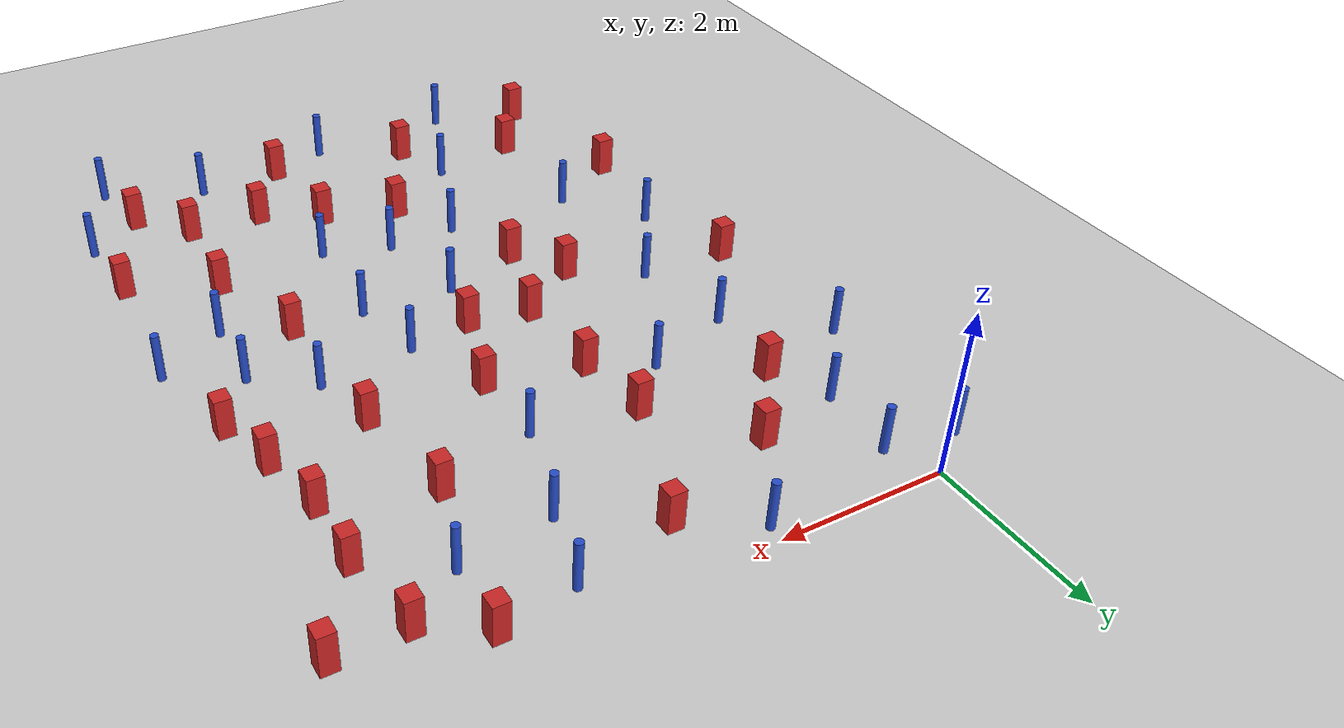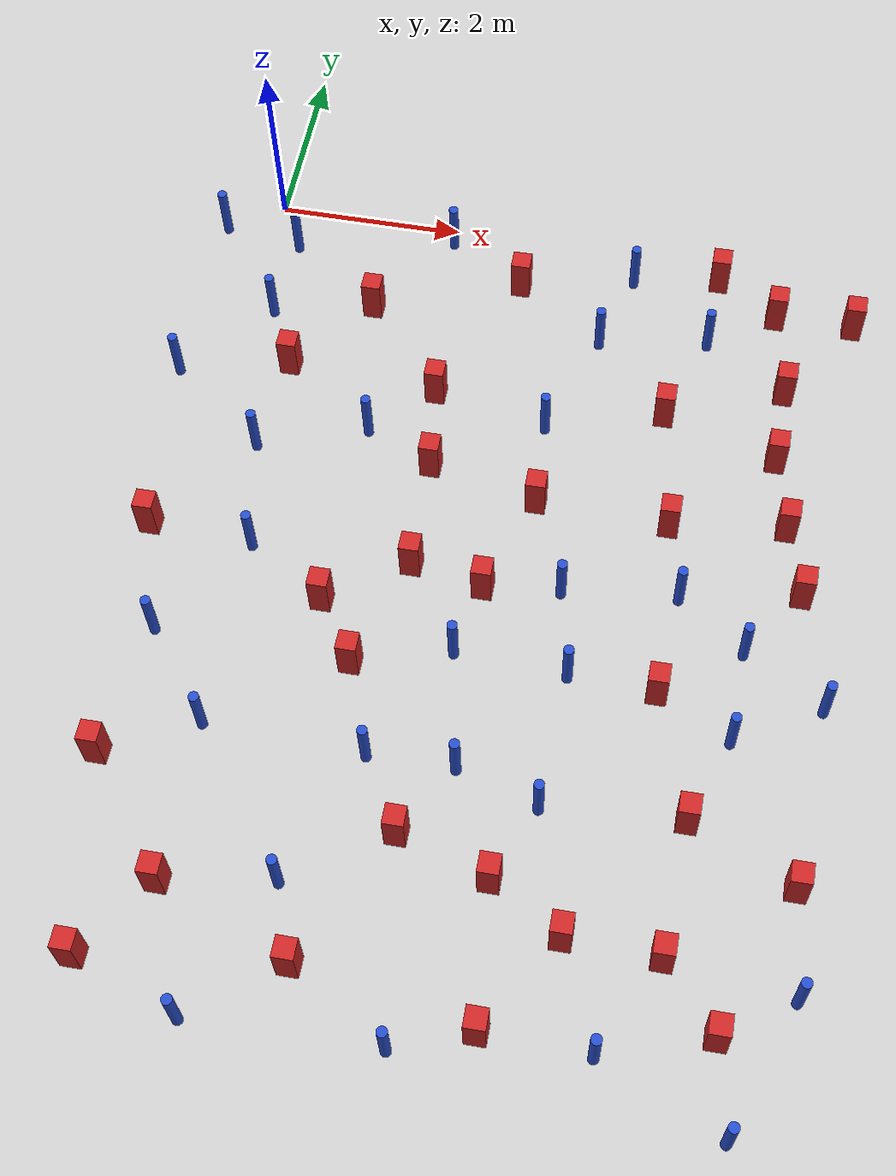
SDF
<sdf version="1.6">
 <world name="default">
  <model name="ground_plane">
   <static>1</static>
   <link name="link">
    <collision name="collision">
     <geometry><plane><normal>0 0 1</normal><size>100 100</size></plane></geometry>
     <surface><friction><ode><mu>100</mu><mu2>50</mu2></ode></friction></surface>
    </collision>
    <visual name="visual">
     <cast_shadows>0</cast_shadows>
     <geometry><plane><normal>0 0 1</normal><size>100 100</size></plane></geometry>
     <material>
      <script><uri>file://media/materials/scripts/gazebo.material</uri><name>Gazebo/Grey</name></script>
     </material>
    </visual>
   </link>
  </model>
  <model name="pole_obstacle3">
   <static>0</static>
   <link name="link">
    <pose>0 0 0.3 0 -0 0</pose>
    <inertial>
     <mass>1</mass>
     <inertia><ixx>0.145833</ixx><ixy>0</ixy><ixz>0</ixz><iyy>0.145833</iyy><iyz>0</iyz><izz>0.125</izz></inertia>
    </inertial>
    <collision name="collision">
     <geometry><cylinder><radius>0.05</radius><length>0.6</length></cylinder></geometry>
    </collision>
    <visual name="visual">
     <geometry><cylinder><radius>0.05</radius><length>0.6</length></cylinder></geometry>
     <material>
      <script><name>Gazebo/Blue</name><uri>file://media/materials/scripts/gazebo.material</uri></script>
     </material>
    </visual>
   </link>
   <pose>5.63583 -5.72954 -5e-06 0 0 -6.7e-05</pose>
  </model>
  <model name="pole_obstacle4">
   <static>0</static>
   <link name="link">
    <pose>0 0 0.3 0 -0 0</pose>
    <inertial>
     <mass>1</mass>
     <inertia><ixx>0.145833</ixx><ixy>0</ixy><ixz>0</ixz><iyy>0.145833</iyy><iyz>0</iyz><izz>0.125</izz></inertia>
    </inertial>
    <collision name="collision">
     <geometry><cylinder><radius>0.05</radius><length>0.6</length></cylinder></geometry>
    </collision>
    <visual name="visual">
     <geometry><cylinder><radius>0.05</radius><length>0.6</length></cylinder></geometry>
     <material>
      <script><name>Gazebo/Blue</name><uri>file://media/materials/scripts/gazebo.material</uri></script>
     </material>
    </visual>
   </link>
   <pose>0.473896 -3.21409 -5e-06 0 0 -2e-05</pose>
  </model>
  <model name="pole_obstacle10">
   <static>0</static>
   <link name="link">
    <pose>0 0 0.3 0 -0 0</pose>
    <inertial>
     <mass>1</mass>
     <inertia><ixx>0.145833</ixx><ixy>0</ixy><ixz>0</ixz><iyy>0.145833</iyy><iyz>0</iyz><izz>0.125</izz></inertia>
    </inertial>
    <collision name="collision">
     <geometry><cylinder><radius>0.05</radius><length>0.6</length></cylinder></geometry>
    </collision>
    <visual name="visual">
     <geometry><cylinder><radius>0.05</radius><length>0.6</length></cylinder></geometry>
     <material>
      <script><name>Gazebo/Blue</name><uri>file://media/materials/scripts/gazebo.material</uri></script>
     </material>
    </visual>
   </link>
   <pose>4.03651 -5.31146 -5e-06 0 0 -3.8e-05</pose>
  </model>
  <model name="pole_obstacle13">
   <static>0</static>
   <link name="link">
    <pose>0 0 0.3 0 -0 0</pose>
    <inertial>
     <mass>1</mass>
     <inertia><ixx>0.145833</ixx><ixy>0</ixy><ixz>0</ixz><iyy>0.145833</iyy><iyz>0</iyz><izz>0.125</izz></inertia>
    </inertial>
    <collision name="collision">
     <geometry><cylinder><radius>0.05</radius><length>0.6</length></cylinder></geometry>
    </collision>
    <visual name="visual">
     <geometry><cylinder><radius>0.05</radius><length>0.6</length></cylinder></geometry>
     <material>
      <script><name>Gazebo/Blue</name><uri>file://media/materials/scripts/gazebo.material</uri></script>
     </material>
    </visual>
   </link>
   <pose>1.98811 -0.198835 -5e-06 0 -0 0</pose>
  </model>
  <model name="square_post_obstacle10">
   <static>0</static>
   <link name="link">
    <pose>0 0 0.25 0 -0 0</pose>
    <inertial>
     <mass>100</mass>
     <inertia>
      <ixx>0.166667</ixx>
      <ixy>0</ixy>
      <ixz>0</ixz>
      <iyy>0.166667</iyy>
      <iyz>0</iyz>
      <izz>0.166667</izz>
     </inertia>
    </inertial>
    <collision name="collision"><geometry><box><size>0.2 0.2 0.5</size></box></geometry></collision>
    <visual name="visual">
     <geometry><box><size>0.2 0.2 0.5</size></box></geometry>
     <material>
      <script><name>Gazebo/Red</name><uri>file://media/materials/scripts/gazebo.material</uri></script>
     </material>
    </visual>
   </link>
   <pose>2.82312 -0.687172 0 -1e-06 7e-06 -0.000607</pose>
  </model>
  <model name="pole_obstacle16">
   <static>0</static>
   <link name="link">
    <pose>0 0 0.3 0 -0 0</pose>
    <inertial>
     <mass>1</mass>
     <inertia><ixx>0.145833</ixx><ixy>0</ixy><ixz>0</ixz><iyy>0.145833</iyy><iyz>0</iyz><izz>0.125</izz></inertia>
    </inertial>
    <collision name="collision">
     <geometry><cylinder><radius>0.05</radius><length>0.6</length></cylinder></geometry>
    </collision>
    <visual name="visual">
     <geometry><cylinder><radius>0.05</radius><length>0.6</length></cylinder></geometry>
     <material>
      <script><name>Gazebo/Blue</name><uri>file://media/materials/scripts/gazebo.material</uri></script>
     </material>
    </visual>
   </link>
   <pose>0.024837 -5.471 -5e-06 0 0 -6.1e-05</pose>
  </model>
  <model name="pole_obstacle18">
   <static>0</static>
   <link name="link">
    <pose>0 0 0.3 0 -0 0</pose>
    <inertial>
     <mass>1</mass>
     <inertia><ixx>0.145833</ixx><ixy>0</ixy><ixz>0</ixz><iyy>0.145833</iyy><iyz>0</iyz><izz>0.125</izz></inertia>
    </inertial>
    <collision name="collision">
     <geometry><cylinder><radius>0.05</radius><length>0.6</length></cylinder></geometry>
    </collision>
    <visual name="visual">
     <geometry><cylinder><radius>0.05</radius><length>0.6</length></cylinder></geometry>
     <material>
      <script><name>Gazebo/Blue</name><uri>file://media/materials/scripts/gazebo.material</uri></script>
     </material>
    </visual>
   </link>
   <pose>0.723135 -4.39332 -5e-06 0 0 -5.6e-05</pose>
  </model>
  <model name="square_post_obstacle18">
   <static>0</static>
   <link name="link">
    <pose>0 0 0.25 0 -0 0</pose>
    <inertial>
     <mass>100</mass>
     <inertia>
      <ixx>0.166667</ixx>
      <ixy>0</ixy>
      <ixz>0</ixz>
      <iyy>0.166667</iyy>
      <iyz>0</iyz>
      <izz>0.166667</izz>
     </inertia>
    </inertial>
    <collision name="collision"><geometry><box><size>0.2 0.2 0.5</size></box></geometry></collision>
    <visual name="visual">
     <geometry><box><size>0.2 0.2 0.5</size></box></geometry>
     <material>
      <script><name>Gazebo/Red</name><uri>file://media/materials/scripts/gazebo.material</uri></script>
     </material>
    </visual>
   </link>
   <pose>5.32556 -6.58024 0 -1e-06 7e-06 -0.000607</pose>
  </model>
  <model name="pole_obstacle19">
   <static>0</static>
   <link name="link">
    <pose>0 0 0.3 0 -0 0</pose>
    <inertial>
     <mass>1</mass>
     <inertia><ixx>0.145833</ixx><ixy>0</ixy><ixz>0</ixz><iyy>0.145833</iyy><iyz>0</iyz><izz>0.125</izz></inertia>
    </inertial>
    <collision name="collision">
     <geometry><cylinder><radius>0.05</radius><length>0.6</length></cylinder></geometry>
    </collision>
    <visual name="visual">
     <geometry><cylinder><radius>0.05</radius><length>0.6</length></cylinder></geometry>
     <material>
      <script><name>Gazebo/Blue</name><uri>file://media/materials/scripts/gazebo.material</uri></script>
     </material>
    </visual>
   </link>
   <pose>-0.563974 -2.40834 -5e-06 0 -0 5e-06</pose>
  </model>
  <model name="pole_obstacle22">
   <static>0</static>
   <link name="link">
    <pose>0 0 0.3 0 -0 0</pose>
    <inertial>
     <mass>1</mass>
     <inertia><ixx>0.145833</ixx><ixy>0</ixy><ixz>0</ixz><iyy>0.145833</iyy><iyz>0</iyz><izz>0.125</izz></inertia>
    </inertial>
    <collision name="collision">
     <geometry><cylinder><radius>0.05</radius><length>0.6</length></cylinder></geometry>
    </collision>
    <visual name="visual">
     <geometry><cylinder><radius>0.05</radius><length>0.6</length></cylinder></geometry>
     <material>
      <script><name>Gazebo/Blue</name><uri>file://media/materials/scripts/gazebo.material</uri></script>
     </material>
    </visual>
   </link>
   <pose>6.45357 -8.04953 -5e-06 0 0 -5e-05</pose>
  </model>
  <model name="pole_obstacle23">
   <static>0</static>
   <link name="link">
    <pose>0 0 0.3 0 -0 0</pose>
    <inertial>
     <mass>1</mass>
     <inertia><ixx>0.145833</ixx><ixy>0</ixy><ixz>0</ixz><iyy>0.145833</iyy><iyz>0</iyz><izz>0.125</izz></inertia>
    </inertial>
    <collision name="collision">
     <geometry><cylinder><radius>0.05</radius><length>0.6</length></cylinder></geometry>
    </collision>
    <visual name="visual">
     <geometry><cylinder><radius>0.05</radius><length>0.6</length></cylinder></geometry>
     <material>
      <script><name>Gazebo/Blue</name><uri>file://media/materials/scripts/gazebo.material</uri></script>
     </material>
    </visual>
   </link>
   <pose>0.292143 -0.538105 -5e-06 0 0 -8e-05</pose>
  </model>
  <model name="square_post_obstacle23">
   <static>0</static>
   <link name="link">
    <pose>0 0 0.25 0 -0 0</pose>
    <inertial>
     <mass>100</mass>
     <inertia>
      <ixx>0.166667</ixx>
      <ixy>0</ixy>
      <ixz>0</ixz>
      <iyy>0.166667</iyy>
      <iyz>0</iyz>
      <izz>0.166667</izz>
     </inertia>
    </inertial>
    <collision name="collision"><geometry><box><size>0.2 0.2 0.5</size></box></geometry></collision>
    <visual name="visual">
     <geometry><box><size>0.2 0.2 0.5</size></box></geometry>
     <material>
      <script><name>Gazebo/Red</name><uri>file://media/materials/scripts/gazebo.material</uri></script>
     </material>
    </visual>
   </link>
   <pose>4.95141 -0.267318 0 -1e-06 7e-06 -0.000607</pose>
  </model>
  <model name="pole_obstacle26">
   <static>0</static>
   <link name="link">
    <pose>0 0 0.3 0 -0 0</pose>
    <inertial>
     <mass>1</mass>
     <inertia><ixx>0.145833</ixx><ixy>0</ixy><ixz>0</ixz><iyy>0.145833</iyy><iyz>0</iyz><izz>0.125</izz></inertia>
    </inertial>
    <collision name="collision">
     <geometry><cylinder><radius>0.05</radius><length>0.6</length></cylinder></geometry>
    </collision>
    <visual name="visual">
     <geometry><cylinder><radius>0.05</radius><length>0.6</length></cylinder></geometry>
     <material>
      <script><name>Gazebo/Blue</name><uri>file://media/materials/scripts/gazebo.material</uri></script>
     </material>
    </visual>
   </link>
   <pose>4.91337 -1.1411 -5e-06 0 0 -5.9e-05</pose>
  </model>
  <model name="pole_obstacle27">
   <static>0</static>
   <link name="link">
    <pose>0 0 0.3 0 -0 0</pose>
    <inertial>
     <mass>1</mass>
     <inertia><ixx>0.145833</ixx><ixy>0</ixy><ixz>0</ixz><iyy>0.145833</iyy><iyz>0</iyz><izz>0.125</izz></inertia>
    </inertial>
    <collision name="collision">
     <geometry><cylinder><radius>0.05</radius><length>0.6</length></cylinder></geometry>
    </collision>
    <visual name="visual">
     <geometry><cylinder><radius>0.05</radius><length>0.6</length></cylinder></geometry>
     <material>
      <script><name>Gazebo/Blue</name><uri>file://media/materials/scripts/gazebo.material</uri></script>
     </material>
    </visual>
   </link>
   <pose>0.235479 -1.47166 -5e-06 0 0 -1e-06</pose>
  </model>
  <model name="square_post_obstacle25">
   <static>0</static>
   <link name="link">
    <pose>0 0 0.25 0 -0 0</pose>
    <inertial>
     <mass>100</mass>
     <inertia>
      <ixx>0.166667</ixx>
      <ixy>0</ixy>
      <ixz>0</ixz>
      <iyy>0.166667</iyy>
      <iyz>0</iyz>
      <izz>0.166667</izz>
     </inertia>
    </inertial>
    <collision name="collision"><geometry><box><size>0.2 0.2 0.5</size></box></geometry></collision>
    <visual name="visual">
     <geometry><box><size>0.2 0.2 0.5</size></box></geometry>
     <material>
      <script><name>Gazebo/Red</name><uri>file://media/materials/scripts/gazebo.material</uri></script>
     </material>
    </visual>
   </link>
   <pose>4.36926 -7.84441 0 -1e-06 7e-06 -0.000607</pose>
  </model>
  <model name="pole_obstacle29">
   <static>0</static>
   <link name="link">
    <pose>0 0 0.3 0 -0 0</pose>
    <inertial>
     <mass>1</mass>
     <inertia><ixx>0.145833</ixx><ixy>0</ixy><ixz>0</ixz><iyy>0.145833</iyy><iyz>0</iyz><izz>0.125</izz></inertia>
    </inertial>
    <collision name="collision">
     <geometry><cylinder><radius>0.05</radius><length>0.6</length></cylinder></geometry>
    </collision>
    <visual name="visual">
     <geometry><cylinder><radius>0.05</radius><length>0.6</length></cylinder></geometry>
     <material>
      <script><name>Gazebo/Blue</name><uri>file://media/materials/scripts/gazebo.material</uri></script>
     </material>
    </visual>
   </link>
   <pose>4.98197 -4.29209 -4e-06 -1e-06 -0 -0.000164</pose>
  </model>
  <model name="square_post_obstacle27">
   <static>0</static>
   <link name="link">
    <pose>0 0 0.25 0 -0 0</pose>
    <inertial>
     <mass>100</mass>
     <inertia>
      <ixx>0.166667</ixx>
      <ixy>0</ixy>
      <ixz>0</ixz>
      <iyy>0.166667</iyy>
      <iyz>0</iyz>
      <izz>0.166667</izz>
     </inertia>
    </inertial>
    <collision name="collision"><geometry><box><size>0.2 0.2 0.5</size></box></geometry></collision>
    <visual name="visual">
     <geometry><box><size>0.2 0.2 0.5</size></box></geometry>
     <material>
      <script><name>Gazebo/Red</name><uri>file://media/materials/scripts/gazebo.material</uri></script>
     </material>
    </visual>
   </link>
   <pose>2.17804 -2.25755 0 -1e-06 7e-06 -0.000607</pose>
  </model>
  <model name="square_post_obstacle32">
   <static>0</static>
   <link name="link">
    <pose>0 0 0.25 0 -0 0</pose>
    <inertial>
     <mass>100</mass>
     <inertia>
      <ixx>0.166667</ixx>
      <ixy>0</ixy>
      <ixz>0</ixz>
      <iyy>0.166667</iyy>
      <iyz>0</iyz>
      <izz>0.166667</izz>
     </inertia>
    </inertial>
    <collision name="collision"><geometry><box><size>0.2 0.2 0.5</size></box></geometry></collision>
    <visual name="visual">
     <geometry><box><size>0.2 0.2 0.5</size></box></geometry>
     <material>
      <script><name>Gazebo/Red</name><uri>file://media/materials/scripts/gazebo.material</uri></script>
     </material>
    </visual>
   </link>
   <pose>3.42953 -3.42662 0 -1e-06 7e-06 -0.000607</pose>
  </model>
  <model name="pole_obstacle37">
   <static>0</static>
   <link name="link">
    <pose>0 0 0.3 0 -0 0</pose>
    <inertial>
     <mass>1</mass>
     <inertia><ixx>0.145833</ixx><ixy>0</ixy><ixz>0</ixz><iyy>0.145833</iyy><iyz>0</iyz><izz>0.125</izz></inertia>
    </inertial>
    <collision name="collision">
     <geometry><cylinder><radius>0.05</radius><length>0.6</length></cylinder></geometry>
    </collision>
    <visual name="visual">
     <geometry><cylinder><radius>0.05</radius><length>0.6</length></cylinder></geometry>
     <material>
      <script><name>Gazebo/Blue</name><uri>file://media/materials/scripts/gazebo.material</uri></script>
     </material>
    </visual>
   </link>
   <pose>4.7955 -8.80986 -5e-06 0 0 -2.6e-05</pose>
  </model>
  <model name="pole_obstacle41">
   <static>0</static>
   <link name="link">
    <pose>0 0 0.3 0 -0 0</pose>
    <inertial>
     <mass>1</mass>
     <inertia><ixx>0.145833</ixx><ixy>0</ixy><ixz>0</ixz><iyy>0.145833</iyy><iyz>0</iyz><izz>0.125</izz></inertia>
    </inertial>
    <collision name="collision">
     <geometry><cylinder><radius>0.05</radius><length>0.6</length></cylinder></geometry>
    </collision>
    <visual name="visual">
     <geometry><cylinder><radius>0.05</radius><length>0.6</length></cylinder></geometry>
     <material>
      <script><name>Gazebo/Blue</name><uri>file://media/materials/scripts/gazebo.material</uri></script>
     </material>
    </visual>
   </link>
   <pose>3.167 -6.42083 -5e-06 0 0 -1e-05</pose>
  </model>
  <model name="square_post_obstacle46">
   <static>0</static>
   <link name="link">
    <pose>0 0 0.25 0 -0 0</pose>
    <inertial>
     <mass>100</mass>
     <inertia>
      <ixx>0.166667</ixx>
      <ixy>0</ixy>
      <ixz>0</ixz>
      <iyy>0.166667</iyy>
      <iyz>0</iyz>
      <izz>0.166667</izz>
     </inertia>
    </inertial>
    <collision name="collision"><geometry><box><size>0.2 0.2 0.5</size></box></geometry></collision>
    <visual name="visual">
     <geometry><box><size>0.2 0.2 0.5</size></box></geometry>
     <material>
      <script><name>Gazebo/Red</name><uri>file://media/materials/scripts/gazebo.material</uri></script>
     </material>
    </visual>
   </link>
   <pose>2.08424 -8.46592 0 -1e-06 7e-06 -0.000607</pose>
  </model>
  <model name="square_post_obstacle47">
   <static>0</static>
   <link name="link">
    <pose>0 0 0.25 0 -0 0</pose>
    <inertial>
     <mass>100</mass>
     <inertia>
      <ixx>0.166667</ixx>
      <ixy>0</ixy>
      <ixz>0</ixz>
      <iyy>0.166667</iyy>
      <iyz>0</iyz>
      <izz>0.166667</izz>
     </inertia>
    </inertial>
    <collision name="collision"><geometry><box><size>0.2 0.2 0.5</size></box></geometry></collision>
    <visual name="visual">
     <geometry><box><size>0.2 0.2 0.5</size></box></geometry>
     <material>
      <script><name>Gazebo/Red</name><uri>file://media/materials/scripts/gazebo.material</uri></script>
     </material>
    </visual>
   </link>
   <pose>0.587191 -2.145 0 -1e-06 7e-06 -0.000607</pose>
  </model>
  <model name="pole_obstacle49">
   <static>0</static>
   <link name="link">
    <pose>0 0 0.3 0 -0 0</pose>
    <inertial>
     <mass>1</mass>
     <inertia><ixx>0.145833</ixx><ixy>0</ixy><ixz>0</ixz><iyy>0.145833</iyy><iyz>0</iyz><izz>0.125</izz></inertia>
    </inertial>
    <collision name="collision">
     <geometry><cylinder><radius>0.05</radius><length>0.6</length></cylinder></geometry>
    </collision>
    <visual name="visual">
     <geometry><cylinder><radius>0.05</radius><length>0.6</length></cylinder></geometry>
     <material>
      <script><name>Gazebo/Blue</name><uri>file://media/materials/scripts/gazebo.material</uri></script>
     </material>
    </visual>
   </link>
   <pose>4.02995 -0.420778 -3e-06 0 -0 2.1e-05</pose>
  </model>
  <model name="pole_obstacle50">
   <static>0</static>
   <link name="link">
    <pose>0 0 0.3 0 -0 0</pose>
    <inertial>
     <mass>1</mass>
     <inertia><ixx>0.145833</ixx><ixy>0</ixy><ixz>0</ixz><iyy>0.145833</iyy><iyz>0</iyz><izz>0.125</izz></inertia>
    </inertial>
    <collision name="collision">
     <geometry><cylinder><radius>0.05</radius><length>0.6</length></cylinder></geometry>
    </collision>
    <visual name="visual">
     <geometry><cylinder><radius>0.05</radius><length>0.6</length></cylinder></geometry>
     <material>
      <script><name>Gazebo/Blue</name><uri>file://media/materials/scripts/gazebo.material</uri></script>
     </material>
    </visual>
   </link>
   <pose>1.24774 -9.08756 -5e-06 0 0 -1.5e-05</pose>
  </model>
  <model name="pole_obstacle56">
   <static>0</static>
   <link name="link">
    <pose>0 0 0.3 0 -0 0</pose>
    <inertial>
     <mass>1</mass>
     <inertia><ixx>0.145833</ixx><ixy>0</ixy><ixz>0</ixz><iyy>0.145833</iyy><iyz>0</iyz><izz>0.125</izz></inertia>
    </inertial>
    <collision name="collision">
     <geometry><cylinder><radius>0.05</radius><length>0.6</length></cylinder></geometry>
    </collision>
    <visual name="visual">
     <geometry><cylinder><radius>0.05</radius><length>0.6</length></cylinder></geometry>
     <material>
      <script><name>Gazebo/Blue</name><uri>file://media/materials/scripts/gazebo.material</uri></script>
     </material>
    </visual>
   </link>
   <pose>2.32097 -6.43254 -5e-06 0 0 -1e-05</pose>
  </model>
  <model name="square_post_obstacle55">
   <static>0</static>
   <link name="link">
    <pose>0 0 0.25 0 -0 0</pose>
    <inertial>
     <mass>100</mass>
     <inertia>
      <ixx>0.166667</ixx>
      <ixy>0</ixy>
      <ixz>0</ixz>
      <iyy>0.166667</iyy>
      <iyz>0</iyz>
      <izz>0.166667</izz>
     </inertia>
    </inertial>
    <collision name="collision"><geometry><box><size>0.2 0.2 0.5</size></box></geometry></collision>
    <visual name="visual">
     <geometry><box><size>0.2 0.2 0.5</size></box></geometry>
     <material>
      <script><name>Gazebo/Red</name><uri>file://media/materials/scripts/gazebo.material</uri></script>
     </material>
    </visual>
   </link>
   <pose>5.79617 -8.47825 0 -1e-06 7e-06 -0.000607</pose>
  </model>
  <model name="square_post_obstacle57">
   <static>0</static>
   <link name="link">
    <pose>0 0 0.25 0 -0 0</pose>
    <inertial>
     <mass>100</mass>
     <inertia>
      <ixx>0.166667</ixx>
      <ixy>0</ixy>
      <ixz>0</ixz>
      <iyy>0.166667</iyy>
      <iyz>0</iyz>
      <izz>0.166667</izz>
     </inertia>
    </inertial>
    <collision name="collision"><geometry><box><size>0.2 0.2 0.5</size></box></geometry></collision>
    <visual name="visual">
     <geometry><box><size>0.2 0.2 0.5</size></box></geometry>
     <material>
      <script><name>Gazebo/Red</name><uri>file://media/materials/scripts/gazebo.material</uri></script>
     </material>
    </visual>
   </link>
   <pose>3.07494 -4.49867 0 -1e-06 7e-06 -0.000607</pose>
  </model>
  <model name="square_post_obstacle58">
   <static>0</static>
   <link name="link">
    <pose>0 0 0.25 0 -0 0</pose>
    <inertial>
     <mass>100</mass>
     <inertia>
      <ixx>0.166667</ixx>
      <ixy>0</ixy>
      <ixz>0</ixz>
      <iyy>0.166667</iyy>
      <iyz>0</iyz>
      <izz>0.166667</izz>
     </inertia>
    </inertial>
    <collision name="collision"><geometry><box><size>0.2 0.2 0.5</size></box></geometry></collision>
    <visual name="visual">
     <geometry><box><size>0.2 0.2 0.5</size></box></geometry>
     <material>
      <script><name>Gazebo/Red</name><uri>file://media/materials/scripts/gazebo.material</uri></script>
     </material>
    </visual>
   </link>
   <pose>1.97257 -5.5136 0 -1e-06 7e-06 -0.000607</pose>
  </model>
  <model name="square_post_obstacle61">
   <static>0</static>
   <link name="link">
    <pose>0 0 0.25 0 -0 0</pose>
    <inertial>
     <mass>100</mass>
     <inertia>
      <ixx>0.166667</ixx>
      <ixy>0</ixy>
      <ixz>0</ixz>
      <iyy>0.166667</iyy>
      <iyz>0</iyz>
      <izz>0.166667</izz>
     </inertia>
    </inertial>
    <collision name="collision"><geometry><box><size>0.2 0.2 0.5</size></box></geometry></collision>
    <visual name="visual">
     <geometry><box><size>0.2 0.2 0.5</size></box></geometry>
     <material>
      <script><name>Gazebo/Red</name><uri>file://media/materials/scripts/gazebo.material</uri></script>
     </material>
    </visual>
   </link>
   <pose>6.42309 -0.677059 0 -1e-06 7e-06 -0.000607</pose>
  </model>
  <model name="pole_obstacle64">
   <static>0</static>
   <link name="link">
    <pose>0 0 0.3 0 -0 0</pose>
    <inertial>
     <mass>1</mass>
     <inertia><ixx>0.145833</ixx><ixy>0</ixy><ixz>0</ixz><iyy>0.145833</iyy><iyz>0</iyz><izz>0.125</izz></inertia>
    </inertial>
    <collision name="collision">
     <geometry><cylinder><radius>0.05</radius><length>0.6</length></cylinder></geometry>
    </collision>
    <visual name="visual">
     <geometry><cylinder><radius>0.05</radius><length>0.6</length></cylinder></geometry>
     <material>
      <script><name>Gazebo/Blue</name><uri>file://media/materials/scripts/gazebo.material</uri></script>
     </material>
    </visual>
   </link>
   <pose>3.37387 -2.50317 -5e-06 0 -0 5e-06</pose>
  </model>
  <model name="pole_obstacle65">
   <static>0</static>
   <link name="link">
    <pose>0 0 0.3 0 -0 0</pose>
    <inertial>
     <mass>1</mass>
     <inertia><ixx>0.145833</ixx><ixy>0</ixy><ixz>0</ixz><iyy>0.145833</iyy><iyz>0</iyz><izz>0.125</izz></inertia>
    </inertial>
    <collision name="collision">
     <geometry><cylinder><radius>0.05</radius><length>0.6</length></cylinder></geometry>
    </collision>
    <visual name="visual">
     <geometry><cylinder><radius>0.05</radius><length>0.6</length></cylinder></geometry>
     <material>
      <script><name>Gazebo/Blue</name><uri>file://media/materials/scripts/gazebo.material</uri></script>
     </material>
    </visual>
   </link>
   <pose>6.46742 -5.26523 -5e-06 0 -0 3e-06</pose>
  </model>
  <model name="square_post_obstacle64">
   <static>0</static>
   <link name="link">
    <pose>0 0 0.25 0 -0 0</pose>
    <inertial>
     <mass>100</mass>
     <inertia>
      <ixx>0.166667</ixx>
      <ixy>0</ixy>
      <ixz>0</ixz>
      <iyy>0.166667</iyy>
      <iyz>0</iyz>
      <izz>0.166667</izz>
     </inertia>
    </inertial>
    <collision name="collision"><geometry><box><size>0.2 0.2 0.5</size></box></geometry></collision>
    <visual name="visual">
     <geometry><box><size>0.2 0.2 0.5</size></box></geometry>
     <material>
      <script><name>Gazebo/Red</name><uri>file://media/materials/scripts/gazebo.material</uri></script>
     </material>
    </visual>
   </link>
   <pose>-0.139484 -6.81333 0 -1e-06 7e-06 -0.000607</pose>
  </model>
  <model name="square_post_obstacle66">
   <static>0</static>
   <link name="link">
    <pose>0 0 0.25 0 -0 0</pose>
    <inertial>
     <mass>100</mass>
     <inertia>
      <ixx>0.166667</ixx>
      <ixy>0</ixy>
      <ixz>0</ixz>
      <iyy>0.166667</iyy>
      <iyz>0</iyz>
      <izz>0.166667</izz>
     </inertia>
    </inertial>
    <collision name="collision"><geometry><box><size>0.2 0.2 0.5</size></box></geometry></collision>
    <visual name="visual">
     <geometry><box><size>0.2 0.2 0.5</size></box></geometry>
     <material>
      <script><name>Gazebo/Red</name><uri>file://media/materials/scripts/gazebo.material</uri></script>
     </material>
    </visual>
   </link>
   <pose>3.78721 -8.77341 0 -1e-06 7e-06 -0.000607</pose>
  </model>
  <model name="pole_obstacle70">
   <static>0</static>
   <link name="link">
    <pose>0 0 0.3 0 -0 0</pose>
    <inertial>
     <mass>1</mass>
     <inertia><ixx>0.145833</ixx><ixy>0</ixy><ixz>0</ixz><iyy>0.145833</iyy><iyz>0</iyz><izz>0.125</izz></inertia>
    </inertial>
    <collision name="collision">
     <geometry><cylinder><radius>0.05</radius><length>0.6</length></cylinder></geometry>
    </collision>
    <visual name="visual">
     <geometry><cylinder><radius>0.05</radius><length>0.6</length></cylinder></geometry>
     <material>
      <script><name>Gazebo/Blue</name><uri>file://media/materials/scripts/gazebo.material</uri></script>
     </material>
    </visual>
   </link>
   <pose>3.97933 -6.67876 -5e-06 0 -0 5.1e-05</pose>
  </model>
  <model name="pole_obstacle71">
   <static>0</static>
   <link name="link">
    <pose>0 0 0.3 0 -0 0</pose>
    <inertial>
     <mass>1</mass>
     <inertia><ixx>0.145833</ixx><ixy>0</ixy><ixz>0</ixz><iyy>0.145833</iyy><iyz>0</iyz><izz>0.125</izz></inertia>
    </inertial>
    <collision name="collision">
     <geometry><cylinder><radius>0.05</radius><length>0.6</length></cylinder></geometry>
    </collision>
    <visual name="visual">
     <geometry><cylinder><radius>0.05</radius><length>0.6</length></cylinder></geometry>
     <material>
      <script><name>Gazebo/Blue</name><uri>file://media/materials/scripts/gazebo.material</uri></script>
     </material>
    </visual>
   </link>
   <pose>1.57661 -2.84294 -5e-06 0 -0 1.8e-05</pose>
  </model>
  <model name="square_post_obstacle69">
   <static>0</static>
   <link name="link">
    <pose>0 0 0.25 0 -0 0</pose>
    <inertial>
     <mass>100</mass>
     <inertia>
      <ixx>0.166667</ixx>
      <ixy>0</ixy>
      <ixz>0</ixz>
      <iyy>0.166667</iyy>
      <iyz>0</iyz>
      <izz>0.166667</izz>
     </inertia>
    </inertial>
    <collision name="collision"><geometry><box><size>0.2 0.2 0.5</size></box></geometry></collision>
    <visual name="visual">
     <geometry><box><size>0.2 0.2 0.5</size></box></geometry>
     <material>
      <script><name>Gazebo/Red</name><uri>file://media/materials/scripts/gazebo.material</uri></script>
     </material>
    </visual>
   </link>
   <pose>0.212929 -8.70575 0 -1e-06 7e-06 -0.000607</pose>
  </model>
  <model name="pole_obstacle73">
   <static>0</static>
   <link name="link">
    <pose>0 0 0.3 0 -0 0</pose>
    <inertial>
     <mass>1</mass>
     <inertia><ixx>0.145833</ixx><ixy>0</ixy><ixz>0</ixz><iyy>0.145833</iyy><iyz>0</iyz><izz>0.125</izz></inertia>
    </inertial>
    <collision name="collision">
     <geometry><cylinder><radius>0.05</radius><length>0.6</length></cylinder></geometry>
    </collision>
    <visual name="visual">
     <geometry><cylinder><radius>0.05</radius><length>0.6</length></cylinder></geometry>
     <material>
      <script><name>Gazebo/Blue</name><uri>file://media/materials/scripts/gazebo.material</uri></script>
     </material>
    </visual>
   </link>
   <pose>-0.554144 -0.406639 -5e-06 0 -0 1.6e-05</pose>
  </model>
  <model name="pole_obstacle74">
   <static>0</static>
   <link name="link">
    <pose>0 0 0.3 0 -0 0</pose>
    <inertial>
     <mass>1</mass>
     <inertia><ixx>0.145833</ixx><ixy>0</ixy><ixz>0</ixz><iyy>0.145833</iyy><iyz>0</iyz><izz>0.125</izz></inertia>
    </inertial>
    <collision name="collision">
     <geometry><cylinder><radius>0.05</radius><length>0.6</length></cylinder></geometry>
    </collision>
    <visual name="visual">
     <geometry><cylinder><radius>0.05</radius><length>0.6</length></cylinder></geometry>
     <material>
      <script><name>Gazebo/Blue</name><uri>file://media/materials/scripts/gazebo.material</uri></script>
     </material>
    </visual>
   </link>
   <pose>5.9724 -9.31111 -5e-06 0 -0 1.9e-05</pose>
  </model>
  <model name="square_post_obstacle76">
   <static>0</static>
   <link name="link">
    <pose>0 0 0.25 0 -0 0</pose>
    <inertial>
     <mass>100</mass>
     <inertia>
      <ixx>0.166667</ixx>
      <ixy>0</ixy>
      <ixz>0</ixz>
      <iyy>0.166667</iyy>
      <iyz>0</iyz>
      <izz>0.166667</izz>
     </inertia>
    </inertial>
    <collision name="collision"><geometry><box><size>0.2 0.2 0.5</size></box></geometry></collision>
    <visual name="visual">
     <geometry><box><size>0.2 0.2 0.5</size></box></geometry>
     <material>
      <script><name>Gazebo/Red</name><uri>file://media/materials/scripts/gazebo.material</uri></script>
     </material>
    </visual>
   </link>
   <pose>0.747527 -7.93051 0 -1e-06 7e-06 -0.000607</pose>
  </model>
  <model name="pole_obstacle78">
   <static>0</static>
   <link name="link">
    <pose>0 0 0.3 0 -0 0</pose>
    <inertial>
     <mass>1</mass>
     <inertia><ixx>0.145833</ixx><ixy>0</ixy><ixz>0</ixz><iyy>0.145833</iyy><iyz>0</iyz><izz>0.125</izz></inertia>
    </inertial>
    <collision name="collision">
     <geometry><cylinder><radius>0.05</radius><length>0.6</length></cylinder></geometry>
    </collision>
    <visual name="visual">
     <geometry><cylinder><radius>0.05</radius><length>0.6</length></cylinder></geometry>
     <material>
      <script><name>Gazebo/Blue</name><uri>file://media/materials/scripts/gazebo.material</uri></script>
     </material>
    </visual>
   </link>
   <pose>3.83703 -4.414 -5e-06 0 0 -6.8e-05</pose>
  </model>
  <model name="square_post_obstacle78">
   <static>0</static>
   <link name="link">
    <pose>0 0 0.25 0 -0 0</pose>
    <inertial>
     <mass>100</mass>
     <inertia>
      <ixx>0.166667</ixx>
      <ixy>0</ixy>
      <ixz>0</ixz>
      <iyy>0.166667</iyy>
      <iyz>0</iyz>
      <izz>0.166667</izz>
     </inertia>
    </inertial>
    <collision name="collision"><geometry><box><size>0.2 0.2 0.5</size></box></geometry></collision>
    <visual name="visual">
     <geometry><box><size>0.2 0.2 0.5</size></box></geometry>
     <material>
      <script><name>Gazebo/Red</name><uri>file://media/materials/scripts/gazebo.material</uri></script>
     </material>
    </visual>
   </link>
   <pose>3.66262 -7.43144 0 -1e-06 7e-06 -0.000607</pose>
  </model>
  <model name="pole_obstacle79">
   <static>0</static>
   <link name="link">
    <pose>0 0 0.3 0 -0 0</pose>
    <inertial>
     <mass>1</mass>
     <inertia><ixx>0.145833</ixx><ixy>0</ixy><ixz>0</ixz><iyy>0.145833</iyy><iyz>0</iyz><izz>0.125</izz></inertia>
    </inertial>
    <collision name="collision">
     <geometry><cylinder><radius>0.05</radius><length>0.6</length></cylinder></geometry>
    </collision>
    <visual name="visual">
     <geometry><cylinder><radius>0.05</radius><length>0.6</length></cylinder></geometry>
     <material>
      <script><name>Gazebo/Blue</name><uri>file://media/materials/scripts/gazebo.material</uri></script>
     </material>
    </visual>
   </link>
   <pose>1.8113 -7.76003 -5e-06 0 -0 9e-06</pose>
  </model>
  <model name="square_post_obstacle80">
   <static>0</static>
   <link name="link">
    <pose>0 0 0.25 0 -0 0</pose>
    <inertial>
     <mass>100</mass>
     <inertia>
      <ixx>0.166667</ixx>
      <ixy>0</ixy>
      <ixz>0</ixz>
      <iyy>0.166667</iyy>
      <iyz>0</iyz>
      <izz>0.166667</izz>
     </inertia>
    </inertial>
    <collision name="collision"><geometry><box><size>0.2 0.2 0.5</size></box></geometry></collision>
    <visual name="visual">
     <geometry><box><size>0.2 0.2 0.5</size></box></geometry>
     <material>
      <script><name>Gazebo/Red</name><uri>file://media/materials/scripts/gazebo.material</uri></script>
     </material>
    </visual>
   </link>
   <pose>5.94752 -3.33669 0 -1e-06 7e-06 -0.000607</pose>
  </model>
  <model name="pole_obstacle82">
   <static>0</static>
   <link name="link">
    <pose>0 0 0.3 0 -0 0</pose>
    <inertial>
     <mass>1</mass>
     <inertia><ixx>0.145833</ixx><ixy>0</ixy><ixz>0</ixz><iyy>0.145833</iyy><iyz>0</iyz><izz>0.125</izz></inertia>
    </inertial>
    <collision name="collision">
     <geometry><cylinder><radius>0.05</radius><length>0.6</length></cylinder></geometry>
    </collision>
    <visual name="visual">
     <geometry><cylinder><radius>0.05</radius><length>0.6</length></cylinder></geometry>
     <material>
      <script><name>Gazebo/Blue</name><uri>file://media/materials/scripts/gazebo.material</uri></script>
     </material>
    </visual>
   </link>
   <pose>3.05535 -9.04699 -5e-06 0 0 -7.3e-05</pose>
  </model>
  <model name="square_post_obstacle82">
   <static>0</static>
   <link name="link">
    <pose>0 0 0.25 0 -0 0</pose>
    <inertial>
     <mass>100</mass>
     <inertia>
      <ixx>0.166667</ixx>
      <ixy>0</ixy>
      <ixz>0</ixz>
      <iyy>0.166667</iyy>
      <iyz>0</iyz>
      <izz>0.166667</izz>
     </inertia>
    </inertial>
    <collision name="collision"><geometry><box><size>0.2 0.2 0.5</size></box></geometry></collision>
    <visual name="visual">
     <geometry><box><size>0.2 0.2 0.5</size></box></geometry>
     <material>
      <script><name>Gazebo/Red</name><uri>file://media/materials/scripts/gazebo.material</uri></script>
     </material>
    </visual>
   </link>
   <pose>1.29714 -1.24413 0 -1e-06 7e-06 -0.000607</pose>
  </model>
  <model name="square_post_obstacle84">
   <static>0</static>
   <link name="link">
    <pose>0 0 0.25 0 -0 0</pose>
    <inertial>
     <mass>100</mass>
     <inertia>
      <ixx>0.166667</ixx>
      <ixy>0</ixy>
      <ixz>0</ixz>
      <iyy>0.166667</iyy>
      <iyz>0</iyz>
      <izz>0.166667</izz>
     </inertia>
    </inertial>
    <collision name="collision"><geometry><box><size>0.2 0.2 0.5</size></box></geometry></collision>
    <visual name="visual">
     <geometry><box><size>0.2 0.2 0.5</size></box></geometry>
     <material>
      <script><name>Gazebo/Red</name><uri>file://media/materials/scripts/gazebo.material</uri></script>
     </material>
    </visual>
   </link>
   <pose>1.55051 -4.88987 0 -1e-06 7e-06 -0.000607</pose>
  </model>
  <model name="square_post_obstacle86">
   <static>0</static>
   <link name="link">
    <pose>0 0 0.25 0 -0 0</pose>
    <inertial>
     <mass>100</mass>
     <inertia>
      <ixx>0.166667</ixx>
      <ixy>0</ixy>
      <ixz>0</ixz>
      <iyy>0.166667</iyy>
      <iyz>0</iyz>
      <izz>0.166667</izz>
     </inertia>
    </inertial>
    <collision name="collision"><geometry><box><size>0.2 0.2 0.5</size></box></geometry></collision>
    <visual name="visual">
     <geometry><box><size>0.2 0.2 0.5</size></box></geometry>
     <material>
      <script><name>Gazebo/Red</name><uri>file://media/materials/scripts/gazebo.material</uri></script>
     </material>
    </visual>
   </link>
   <pose>-0.337319 -4.31848 0 -1e-06 7e-06 -0.000607</pose>
  </model>
  <model name="square_post_obstacle87">
   <static>0</static>
   <link name="link">
    <pose>0 0 0.25 0 -0 0</pose>
    <inertial>
     <mass>100</mass>
     <inertia>
      <ixx>0.166667</ixx>
      <ixy>0</ixy>
      <ixz>0</ixz>
      <iyy>0.166667</iyy>
      <iyz>0</iyz>
      <izz>0.166667</izz>
     </inertia>
    </inertial>
    <collision name="collision"><geometry><box><size>0.2 0.2 0.5</size></box></geometry></collision>
    <visual name="visual">
     <geometry><box><size>0.2 0.2 0.5</size></box></geometry>
     <material>
      <script><name>Gazebo/Red</name><uri>file://media/materials/scripts/gazebo.material</uri></script>
     </material>
    </visual>
   </link>
   <pose>5.77617 -1.66892 0 -1e-06 7e-06 -0.000607</pose>
  </model>
  <model name="pole_obstacle91">
   <static>0</static>
   <link name="link">
    <pose>0 0 0.3 0 -0 0</pose>
    <inertial>
     <mass>1</mass>
     <inertia><ixx>0.145833</ixx><ixy>0</ixy><ixz>0</ixz><iyy>0.145833</iyy><iyz>0</iyz><izz>0.125</izz></inertia>
    </inertial>
    <collision name="collision">
     <geometry><cylinder><radius>0.05</radius><length>0.6</length></cylinder></geometry>
    </collision>
    <visual name="visual">
     <geometry><cylinder><radius>0.05</radius><length>0.6</length></cylinder></geometry>
     <material>
      <script><name>Gazebo/Blue</name><uri>file://media/materials/scripts/gazebo.material</uri></script>
     </material>
    </visual>
   </link>
   <pose>3.77265 -1.31485 -5e-06 0 0 -1.4e-05</pose>
  </model>
  <model name="square_post_obstacle94">
   <static>0</static>
   <link name="link">
    <pose>0 0 0.25 0 -0 0</pose>
    <inertial>
     <mass>100</mass>
     <inertia>
      <ixx>0.166667</ixx>
      <ixy>0</ixy>
      <ixz>0</ixz>
      <iyy>0.166667</iyy>
      <iyz>0</iyz>
      <izz>0.166667</izz>
     </inertia>
    </inertial>
    <collision name="collision"><geometry><box><size>0.2 0.2 0.5</size></box></geometry></collision>
    <visual name="visual">
     <geometry><box><size>0.2 0.2 0.5</size></box></geometry>
     <material>
      <script><name>Gazebo/Red</name><uri>file://media/materials/scripts/gazebo.material</uri></script>
     </material>
    </visual>
   </link>
   <pose>4.78318 -3.48497 0 -1e-06 7e-06 -0.000607</pose>
  </model>
  <model name="square_post_obstacle95">
   <static>0</static>
   <link name="link">
    <pose>0 0 0.25 0 -0 0</pose>
    <inertial>
     <mass>100</mass>
     <inertia>
      <ixx>0.166667</ixx>
      <ixy>0</ixy>
      <ixz>0</ixz>
      <iyy>0.166667</iyy>
      <iyz>0</iyz>
      <izz>0.166667</izz>
     </inertia>
    </inertial>
    <collision name="collision"><geometry><box><size>0.2 0.2 0.5</size></box></geometry></collision>
    <visual name="visual">
     <geometry><box><size>0.2 0.2 0.5</size></box></geometry>
     <material>
      <script><name>Gazebo/Red</name><uri>file://media/materials/scripts/gazebo.material</uri></script>
     </material>
    </visual>
   </link>
   <pose>6.15908 -4.07154 0 -1e-06 7e-06 -0.000607</pose>
  </model>
  <model name="pole_obstacle98">
   <static>0</static>
   <link name="link">
    <pose>0 0 0.3 0 -0 0</pose>
    <inertial>
     <mass>1</mass>
     <inertia><ixx>0.145833</ixx><ixy>0</ixy><ixz>0</ixz><iyy>0.145833</iyy><iyz>0</iyz><izz>0.125</izz></inertia>
    </inertial>
    <collision name="collision">
     <geometry><cylinder><radius>0.05</radius><length>0.6</length></cylinder></geometry>
    </collision>
    <visual name="visual">
     <geometry><cylinder><radius>0.05</radius><length>0.6</length></cylinder></geometry>
     <material>
      <script><name>Gazebo/Blue</name><uri>file://media/materials/scripts/gazebo.material</uri></script>
     </material>
    </visual>
   </link>
   <pose>5.66441 -4.7876 -5e-06 0 0 -6.6e-05</pose>
  </model>
  <model name="square_post_obstacle99">
   <static>0</static>
   <link name="link">
    <pose>0 0 0.25 0 -0 0</pose>
    <inertial>
     <mass>100</mass>
     <inertia>
      <ixx>0.166667</ixx>
      <ixy>0</ixy>
      <ixz>0</ixz>
      <iyy>0.166667</iyy>
      <iyz>0</iyz>
      <izz>0.166667</izz>
     </inertia>
    </inertial>
    <collision name="collision"><geometry><box><size>0.2 0.2 0.5</size></box></geometry></collision>
    <visual name="visual">
     <geometry><box><size>0.2 0.2 0.5</size></box></geometry>
     <material>
      <script><name>Gazebo/Red</name><uri>file://media/materials/scripts/gazebo.material</uri></script>
     </material>
    </visual>
   </link>
   <pose>2.75855 -7.13648 0 -1e-06 7e-06 -0.000607</pose>
  </model>
  <model name="square_post_obstacle100">
   <static>0</static>
   <link name="link">
    <pose>0 0 0.25 0 -0 0</pose>
    <inertial>
     <mass>100</mass>
     <inertia>
      <ixx>0.166667</ixx>
      <ixy>0</ixy>
      <ixz>0</ixz>
      <iyy>0.166667</iyy>
      <iyz>0</iyz>
      <izz>0.166667</izz>
     </inertia>
    </inertial>
    <collision name="collision"><geometry><box><size>0.2 0.2 0.5</size></box></geometry></collision>
    <visual name="visual">
     <geometry><box><size>0.2 0.2 0.5</size></box></geometry>
     <material>
      <script><name>Gazebo/Red</name><uri>file://media/materials/scripts/gazebo.material</uri></script>
     </material>
    </visual>
   </link>
   <pose>6.35515 -7.05341 0 -1e-06 7e-06 -0.000607</pose>
  </model>
  <model name="square_post_obstacle101">
   <static>0</static>
   <link name="link">
    <pose>0 0 0.25 0 -0 0</pose>
    <inertial>
     <mass>100</mass>
     <inertia>
      <ixx>0.166667</ixx>
      <ixy>0</ixy>
      <ixz>0</ixz>
      <iyy>0.166667</iyy>
      <iyz>0</iyz>
      <izz>0.166667</izz>
     </inertia>
    </inertial>
    <collision name="collision"><geometry><box><size>0.2 0.2 0.5</size></box></geometry></collision>
    <visual name="visual">
     <geometry><box><size>0.2 0.2 0.5</size></box></geometry>
     <material>
      <script><name>Gazebo/Red</name><uri>file://media/materials/scripts/gazebo.material</uri></script>
     </material>
    </visual>
   </link>
   <pose>2.33692 -4.35243 0 -1e-06 7e-06 -0.000607</pose>
  </model>
  <model name="square_post_obstacle102">
   <static>0</static>
   <link name="link">
    <pose>0 0 0.25 0 -0 0</pose>
    <inertial>
     <mass>100</mass>
     <inertia>
      <ixx>0.166667</ixx>
      <ixy>0</ixy>
      <ixz>0</ixz>
      <iyy>0.166667</iyy>
      <iyz>0</iyz>
      <izz>0.166667</izz>
     </inertia>
    </inertial>
    <collision name="collision"><geometry><box><size>0.2 0.2 0.5</size></box></geometry></collision>
    <visual name="visual">
     <geometry><box><size>0.2 0.2 0.5</size></box></geometry>
     <material>
      <script><name>Gazebo/Red</name><uri>file://media/materials/scripts/gazebo.material</uri></script>
     </material>
    </visual>
   </link>
   <pose>5.26113 -7.8788 0 -1e-06 7e-06 -0.000607</pose>
  </model>
  <model name="square_post_obstacle104">
   <static>0</static>
   <link name="link">
    <pose>0 0 0.25 0 -0 0</pose>
    <inertial>
     <mass>100</mass>
     <inertia>
      <ixx>0.166667</ixx>
      <ixy>0</ixy>
      <ixz>0</ixz>
      <iyy>0.166667</iyy>
      <iyz>0</iyz>
      <izz>0.166667</izz>
     </inertia>
    </inertial>
    <collision name="collision"><geometry><box><size>0.2 0.2 0.5</size></box></geometry></collision>
    <visual name="visual">
     <geometry><box><size>0.2 0.2 0.5</size></box></geometry>
     <material>
      <script><name>Gazebo/Red</name><uri>file://media/materials/scripts/gazebo.material</uri></script>
     </material>
    </visual>
   </link>
   <pose>4.57374 -2.15335 0 -1e-06 7e-06 -0.000607</pose>
  </model>
  <model name="square_post_obstacle106">
   <static>0</static>
   <link name="link">
    <pose>0 0 0.25 0 -0 0</pose>
    <inertial>
     <mass>100</mass>
     <inertia>
      <ixx>0.166667</ixx>
      <ixy>0</ixy>
      <ixz>0</ixz>
      <iyy>0.166667</iyy>
      <iyz>0</iyz>
      <izz>0.166667</izz>
     </inertia>
    </inertial>
    <collision name="collision"><geometry><box><size>0.2 0.2 0.5</size></box></geometry></collision>
    <visual name="visual">
     <geometry><box><size>0.2 0.2 0.5</size></box></geometry>
     <material>
      <script><name>Gazebo/Red</name><uri>file://media/materials/scripts/gazebo.material</uri></script>
     </material>
    </visual>
   </link>
   <pose>5.76651 -2.53235 0 -1e-06 7e-06 -0.000607</pose>
  </model>
  <model name="pole_obstacle101">
   <static>0</static>
   <link name="link">
    <pose>0 0 0.3 0 -0 0</pose>
    <inertial>
     <mass>1</mass>
     <inertia><ixx>0.145833</ixx><ixy>0</ixy><ixz>0</ixz><iyy>0.145833</iyy><iyz>0</iyz><izz>0.125</izz></inertia>
    </inertial>
    <collision name="collision">
     <geometry><cylinder><radius>0.05</radius><length>0.6</length></cylinder></geometry>
    </collision>
    <visual name="visual">
     <geometry><cylinder><radius>0.05</radius><length>0.6</length></cylinder></geometry>
     <material>
      <script><name>Gazebo/Blue</name><uri>file://media/materials/scripts/gazebo.material</uri></script>
     </material>
    </visual>
   </link>
   <pose>0.737506 -6.36597 -5e-06 0 -0 2e-06</pose>
  </model>
  <model name="square_post_obstacle109">
   <static>0</static>
   <link name="link">
    <pose>0 0 0.25 0 -0 0</pose>
    <inertial>
     <mass>100</mass>
     <inertia>
      <ixx>0.166667</ixx>
      <ixy>0</ixy>
      <ixz>0</ixz>
      <iyy>0.166667</iyy>
      <iyz>0</iyz>
      <izz>0.166667</izz>
     </inertia>
    </inertial>
    <collision name="collision"><geometry><box><size>0.2 0.2 0.5</size></box></geometry></collision>
    <visual name="visual">
     <geometry><box><size>0.2 0.2 0.5</size></box></geometry>
     <material>
      <script><name>Gazebo/Red</name><uri>file://media/materials/scripts/gazebo.material</uri></script>
     </material>
    </visual>
   </link>
   <pose>2.30057 -3.17278 0 -1e-06 7e-06 -0.000607</pose>
  </model>
  <model name="square_post_obstacle116">
   <static>0</static>
   <link name="link">
    <pose>0 0 0.25 0 -0 0</pose>
    <inertial>
     <mass>100</mass>
     <inertia>
      <ixx>0.166667</ixx>
      <ixy>0</ixy>
      <ixz>0</ixz>
      <iyy>0.166667</iyy>
      <iyz>0</iyz>
      <izz>0.166667</izz>
     </inertia>
    </inertial>
    <collision name="collision"><geometry><box><size>0.2 0.2 0.5</size></box></geometry></collision>
    <visual name="visual">
     <geometry><box><size>0.2 0.2 0.5</size></box></geometry>
     <material>
      <script><name>Gazebo/Red</name><uri>file://media/materials/scripts/gazebo.material</uri></script>
     </material>
    </visual>
   </link>
   <pose>4.89764 -5.34408 0 -1e-06 7e-06 -0.000607</pose>
  </model>
  <model name="pole_obstacle109">
   <static>0</static>
   <link name="link">
    <pose>0 0 0.3 0 -0 0</pose>
    <inertial>
     <mass>1</mass>
     <inertia><ixx>0.145833</ixx><ixy>0</ixy><ixz>0</ixz><iyy>0.145833</iyy><iyz>0</iyz><izz>0.125</izz></inertia>
    </inertial>
    <collision name="collision">
     <geometry><cylinder><radius>0.05</radius><length>0.6</length></cylinder></geometry>
    </collision>
    <visual name="visual">
     <geometry><cylinder><radius>0.05</radius><length>0.6</length></cylinder></geometry>
     <material>
      <script><name>Gazebo/Blue</name><uri>file://media/materials/scripts/gazebo.material</uri></script>
     </material>
    </visual>
   </link>
   <pose>2.92309 -5.24119 -5e-06 0 -0 3.3e-05</pose>
  </model>
  <model name="square_post_obstacle127">
   <static>0</static>
   <link name="link">
    <pose>0 0 0.25 0 -0 0</pose>
    <inertial>
     <mass>100</mass>
     <inertia>
      <ixx>0.166667</ixx>
      <ixy>0</ixy>
      <ixz>0</ixz>
      <iyy>0.166667</iyy>
      <iyz>0</iyz>
      <izz>0.166667</izz>
     </inertia>
    </inertial>
    <collision name="collision"><geometry><box><size>0.2 0.2 0.5</size></box></geometry></collision>
    <visual name="visual">
     <geometry><box><size>0.2 0.2 0.5</size></box></geometry>
     <material>
      <script><name>Gazebo/Red</name><uri>file://media/materials/scripts/gazebo.material</uri></script>
     </material>
    </visual>
   </link>
   <pose>5.60041 -0.680859 0 -1e-06 7e-06 -0.000607</pose>
  </model>
 </world>
</sdf>
